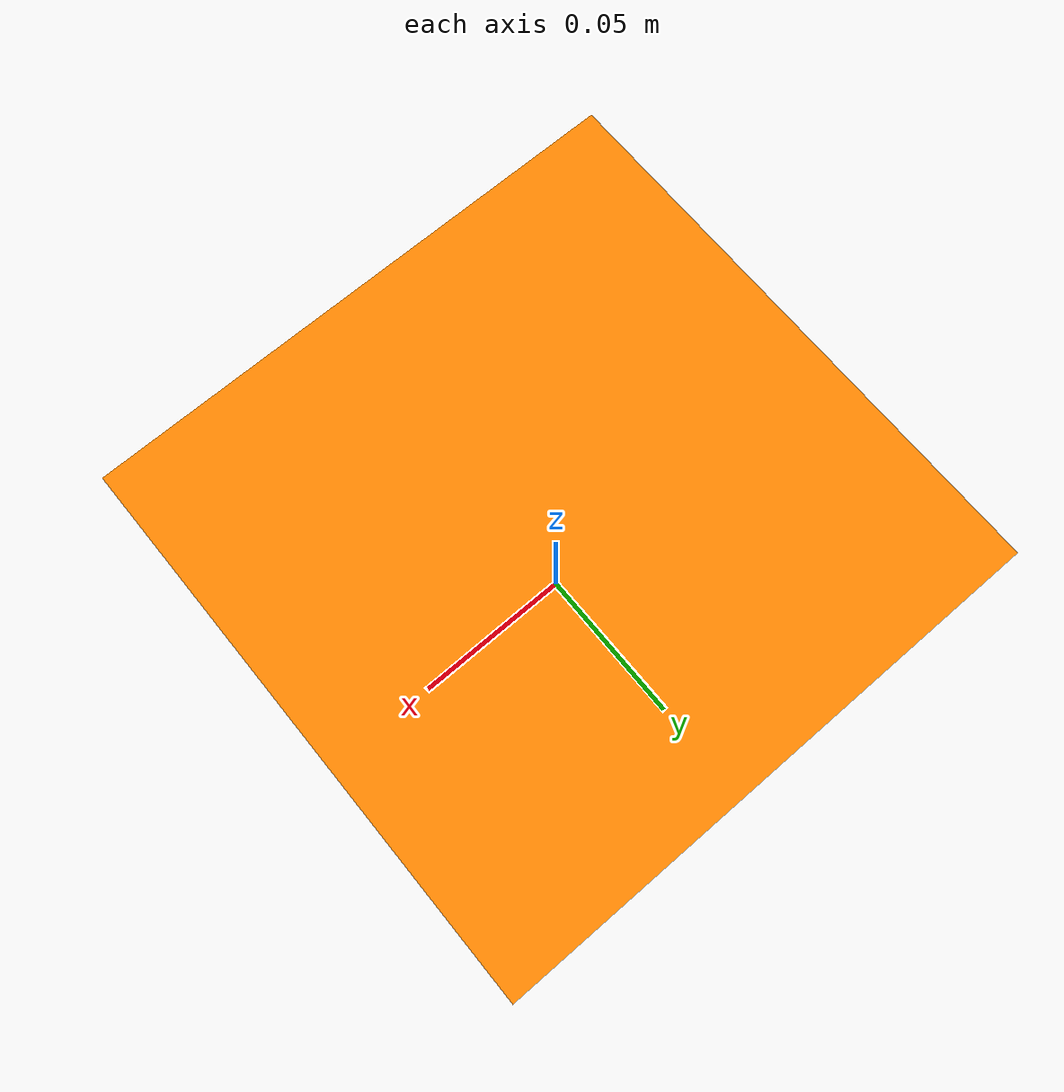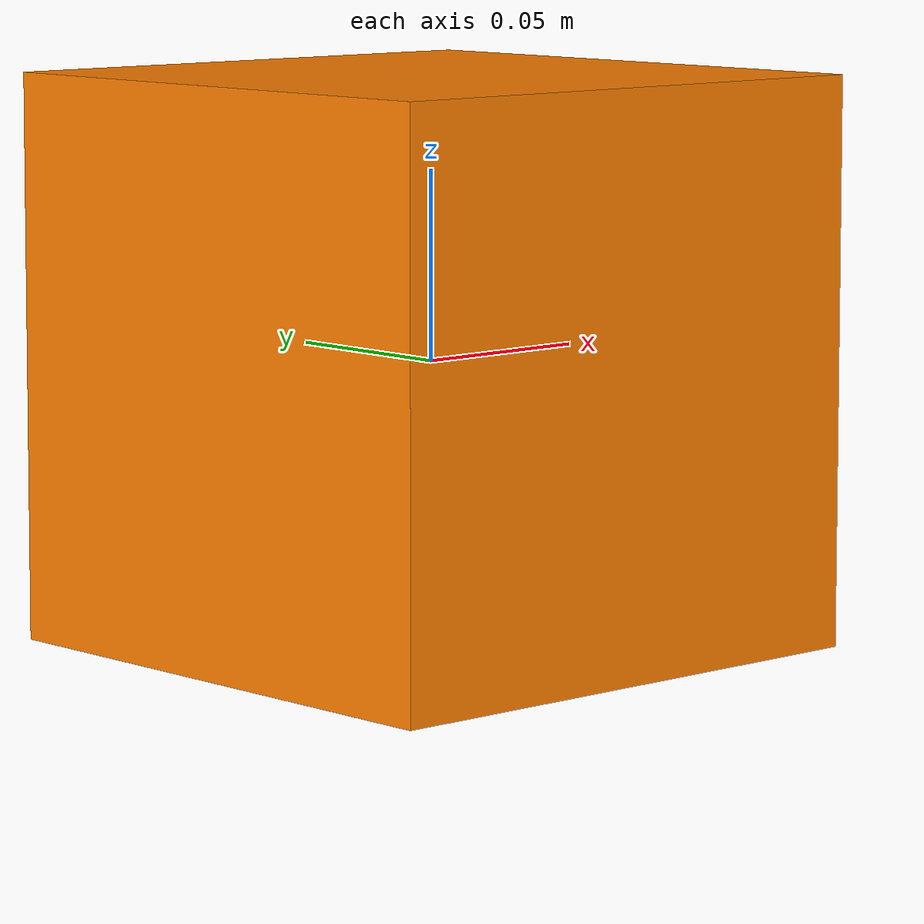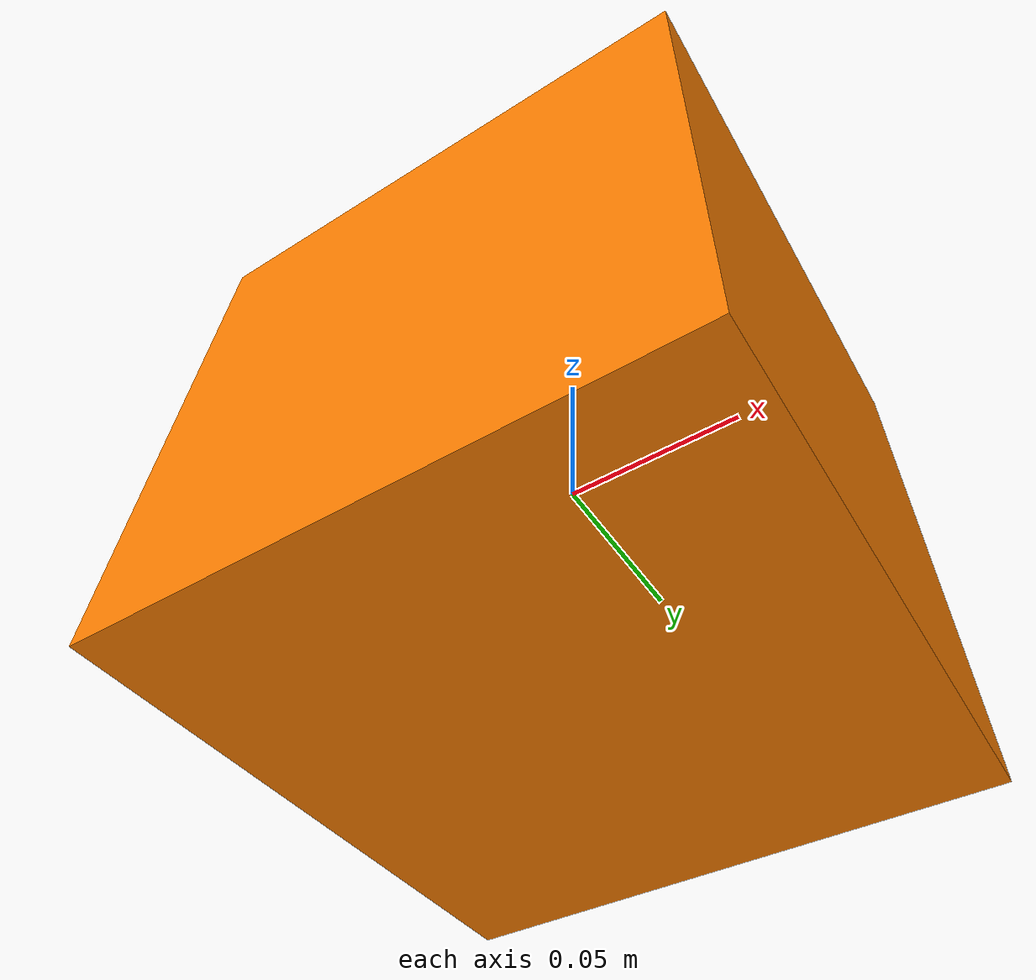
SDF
<?xml version="1.0" ?>
<!-- DO NOT EDIT: Generated from model.sdf.jinja -->
<!-- Payload mass: 0.8kg, Shape: box -->
<sdf version="1.9">
  <model name="payload">
    <pose>0 0 0 0 0 0</pose>

    <!-- Static: false = dynamic object, will respond to forces -->
    <static>false</static>

    <!-- Disable self-collision within this model -->
    <self_collide>false</self_collide>

    <!-- Main payload link -->
    <link name="payload_link">
      <gravity>true</gravity>
      <self_collide>false</self_collide>
      <velocity_decay>
        <linear>0.05</linear>
        <angular>0.05</angular>
      </velocity_decay>

      <!-- Initial pose: center at origin -->
      <pose>0 0 0 0 0 0</pose>

      <!-- INERTIAL PROPERTIES (Auto-calculated) -->
      <inertial>
        <mass>0.8</mass>

        <!-- Box inertia -->
        <inertia>
          <ixx>0.003</ixx>
          <ixy>0</ixy>
          <ixz>0</ixz>
          <iyy>0.003</iyy>
          <iyz>0</iyz>
          <izz>0.003</izz>
        </inertia>

        <pose>0 0 0 0 0 0</pose>
      </inertial>

      <!-- COLLISION GEOMETRY -->
      <collision name="collision">

        <geometry>
          <box>
            <size>0.15 0.15 0.15</size>
          </box>
        </geometry>

        <!-- Surface properties -->
        <surface>
          <contact>
            <ode>
              <min_depth>0.01</min_depth>
              <max_vel>10.0</max_vel>
              <kp>5e5</kp>
              <kd>500</kd>
            </ode>
          </contact>

          <friction>
            <ode>
              <mu>0.6</mu>
              <mu2>0.6</mu2>
            </ode>
            <torsional>
              <coefficient>0.5</coefficient>
              <surface_radius>0.05</surface_radius>
              <use_patch_radius>true</use_patch_radius>
              <ode>
                <slip>0.0</slip>
              </ode>
            </torsional>
          </friction>

          <bounce>
            <restitution_coefficient>0.1</restitution_coefficient>
            <threshold>0.05</threshold>
          </bounce>
        </surface>

        <max_contacts>8</max_contacts>
      </collision>

      <!-- VISUAL GEOMETRY -->
      <visual name="visual">

        <geometry>
          <box>
            <size>0.15 0.15 0.15</size>
          </box>
        </geometry>

        <material>
          <ambient>1.0 0.5 0.0 1.0</ambient>
          <diffuse>1.0 0.5 0.0 1.0</diffuse>
          <specular>0.5 0.5 0.5 1.0</specular>
          <emissive>0 0 0 1.0</emissive>
        </material>

        <cast_shadows>false</cast_shadows>
        <transparency>0.0</transparency>
      </visual>

    </link>

    <!-- AERODYNAMIC DRAG PLUGIN -->
    <plugin filename="gz-sim-lift-drag-system" name="gz::sim::systems::LiftDrag">
      <!-- Drag coefficient for box -->

      <cda>1.05</cda>  <!-- Box drag coefficient -->
      <area>0.0225</area>

      <cla>0.0</cla>
      <a0>0.0</a0>
      <cma>0.0</cma>
      <alpha_stall>0</alpha_stall>
      <cla_stall>0.0</cla_stall>
      <cda_stall>1.05</cda_stall>
      <cma_stall>0.0</cma_stall>

      <cp>0 0 0</cp>
      <air_density>1.225</air_density>
      <forward>1 0 0</forward>
      <upward>0 0 1</upward>
      <link_name>payload_link</link_name>
    </plugin>

  </model>
</sdf>
